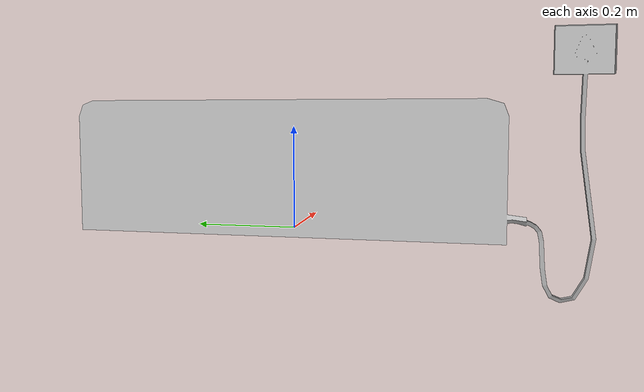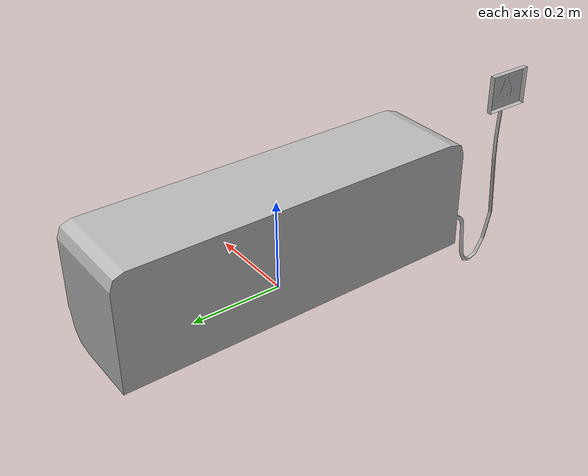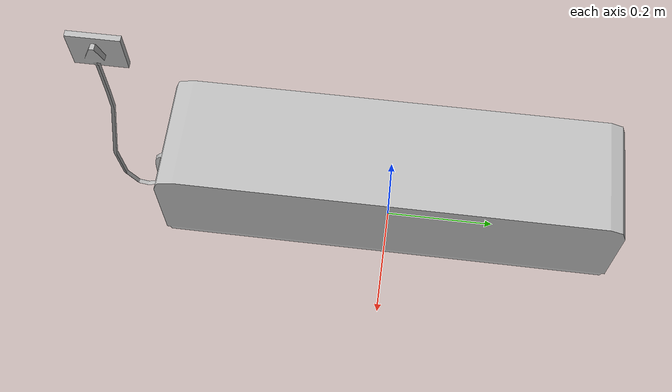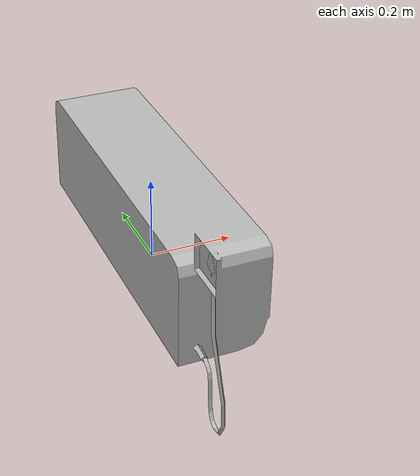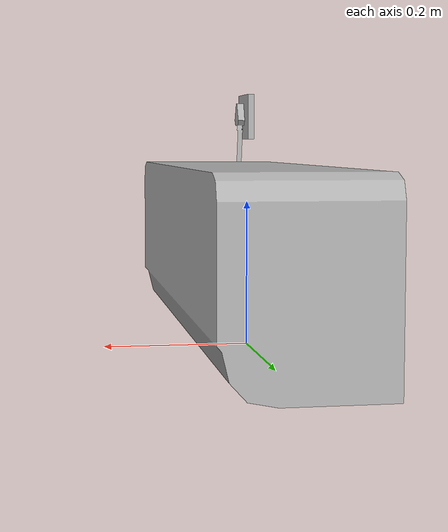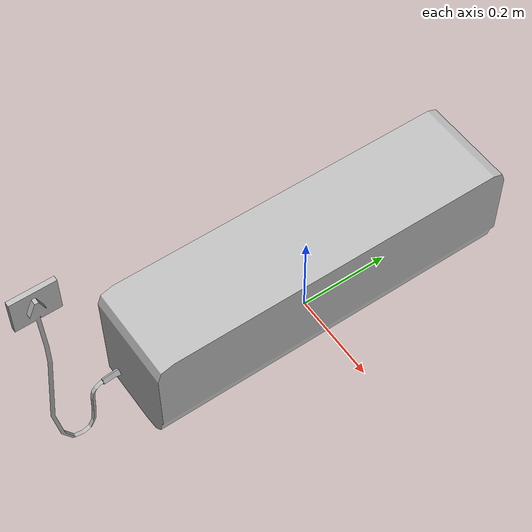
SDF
<?xml version="1.0" ?>
<sdf version="1.6">
  <model name="aws_robomaker_residential_AirconditionerA_01">
    <link name="link">
      <inertial>
        <mass>1</mass>
        <inertia>
          <ixx>0.01</ixx>
          <iyy>0.01</iyy>
          <izz>0.01</izz>
          <ixy>0</ixy>
          <ixz>0</ixz>
          <iyz>0</iyz>
        </inertia>
      </inertial>
      <collision name="collision">
        <geometry>
          <mesh>
            <uri>model://aws_robomaker_residential_AirconditionerA_01/meshes/aws_AirconditionerA_01_collision.DAE</uri>
            <scale>1 1 1</scale>
          </mesh>
        </geometry>
      </collision>
      <visual name="visual">
	    <geometry>
          <mesh>
            <uri>model://aws_robomaker_residential_AirconditionerA_01/meshes/aws_AirconditionerA_01_visual.DAE</uri>
          </mesh>
        </geometry>
      <meta> <layer> 1 </layer></meta>
</visual>
    </link>
	<static>1</static>
  </model>
</sdf>
